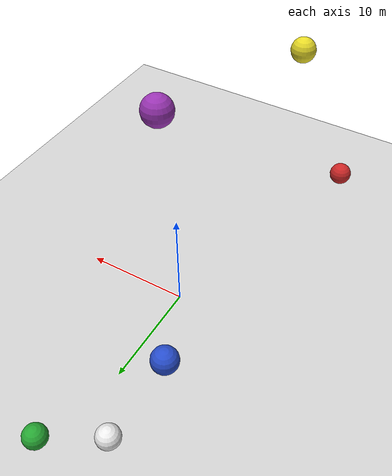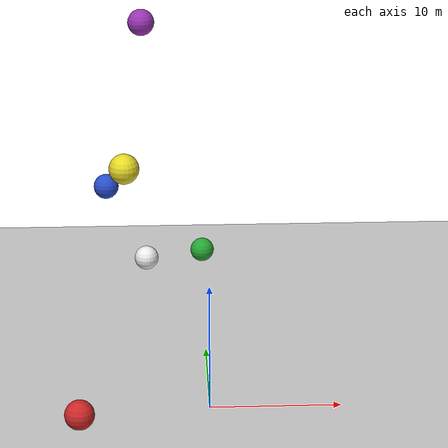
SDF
<?xml version="1.0" ?>
<sdf version="1.4">
  <world name="default">
    <scene>
    <shadows>false</shadows>
    <grid>false</grid>
    </scene>
    <include>
      <uri>model://ground_plane</uri>
    </include>
    <include>
      <uri>model://sun</uri>
    </include>

    <!-- Only one ROS interface plugin is required per world -->
    <plugin name="ros_interface_plugin" filename="librotors_gazebo_ros_interface_plugin.so"/>

    <spherical_coordinates>
      <surface_model>EARTH_WGS84</surface_model>
      <latitude_deg>47.3667</latitude_deg>
      <longitude_deg>8.5500</longitude_deg>
      <elevation>500.0</elevation>
      <heading_deg>0</heading_deg>
    </spherical_coordinates>

    <physics type='ode'>
      <ode>
        <solver>
          <type>quick</type>
          <iters>1000</iters>
          <sor>1.3</sor>
        </solver>
        <constraints>
          <cfm>0</cfm>
          <erp>0.2</erp>
          <contact_max_correcting_vel>100</contact_max_correcting_vel>
          <contact_surface_layer>0.001</contact_surface_layer>
        </constraints>
      </ode>
      <max_step_size>0.0025</max_step_size>
      <real_time_factor>2</real_time_factor>
      <real_time_update_rate>5000</real_time_update_rate>
      <gravity>0 0 -9.81</gravity>
    </physics>

<model name='sphere_obstacle_0'>
      <static>true</static>
      <pose>-8.96 -15.52 8.00 0 0 0</pose> <!-- x y z roll pitch yaw -->
      <link name='link'>
        <collision name='collision'>
          <geometry>
            <sphere><radius>1.00</radius></sphere>
          </geometry>
        </collision>
        <visual name='visual'>
          <geometry>
            <sphere><radius>1.00</radius></sphere>
          </geometry>
          <material>
            <script>
              <uri>file://media/materials/scripts/gazebo.material</uri>
              <name>Gazebo/Red</name> <!-- Make them visible -->
            </script>
          </material>
        </visual>
      </link>
    </model>

    <model name='sphere_obstacle_1'>
      <static>true</static>
      <pose>-7.92 13.71 13.00 0 0 0</pose>
      <link name='link'>
        <collision name='collision'>
          <geometry>
            <sphere><radius>1.00</radius></sphere>
          </geometry>
        </collision>
        <visual name='visual'>
          <geometry>
            <sphere><radius>1.00</radius></sphere>
          </geometry>
          <material>
            <script>
              <uri>file://media/materials/scripts/gazebo.material</uri>
              <name>Gazebo/Blue</name>
            </script>
          </material>
        </visual>
      </link>
    </model>

    <model name='sphere_obstacle_3'>
      <static>true</static>
      <pose>-5.83 -10.10 23.00 0 0 0</pose>
      <link name='link'>
        <collision name='collision'>
          <geometry>
            <sphere><radius>1.00</radius></sphere>
          </geometry>
        </collision>
        <visual name='visual'>
          <geometry>
            <sphere><radius>1.00</radius></sphere>
          </geometry>
          <material>
            <script>
              <uri>file://media/materials/scripts/gazebo.material</uri>
              <name>Gazebo/Yellow</name>
            </script>
          </material>
        </visual>
      </link>
    </model>

    <model name='sphere_obstacle_4'>
      <static>true</static>
      <pose>-4.79 8.30 28.00 0 0 0</pose>
      <link name='link'>
        <collision name='collision'>
          <geometry>
            <sphere><radius>1.00</radius></sphere>
          </geometry>
        </collision>
        <visual name='visual'>
          <geometry>
            <sphere><radius>1.00</radius></sphere>
          </geometry>
          <material>
            <script>
              <uri>file://media/materials/scripts/gazebo.material</uri>
              <name>Gazebo/Purple</name>
            </script>
          </material>
        </visual>
      </link>
    </model>
   <model name='sphere_obstacle_5'>
  <static>true</static>
  <pose>-0.026 19.60 4.875 0 0 0</pose>
  <link name='link'>
    <collision name='collision'>
      <geometry>
        <sphere><radius>1.00</radius></sphere>
      </geometry>
    </collision>
    <visual name='visual'>
      <geometry>
        <sphere><radius>1.00</radius></sphere>
      </geometry>
      <material>
        <script>
          <uri>file://media/materials/scripts/gazebo.material</uri>
          <name>Gazebo/Green</name>
        </script>
      </material>
    </visual>
  </link>
</model>

<model name='sphere_obstacle_6'>
  <static>true</static>
  <pose>-4.8 17.093 5.248 0 0 0</pose>
  <link name='link'>
    <collision name='collision'>
      <geometry>
        <sphere><radius>1.00</radius></sphere>
      </geometry>
    </collision>
    <visual name='visual'>
      <geometry>
        <sphere><radius>1.00</radius></sphere>
      </geometry>
      <material>
        <script>
          <uri>file://media/materials/scripts/gazebo.material</uri>
          <name>Gazebo/White</name>
        </script>
      </material>
    </visual>
  </link>
</model>

 </world>
</sdf>
